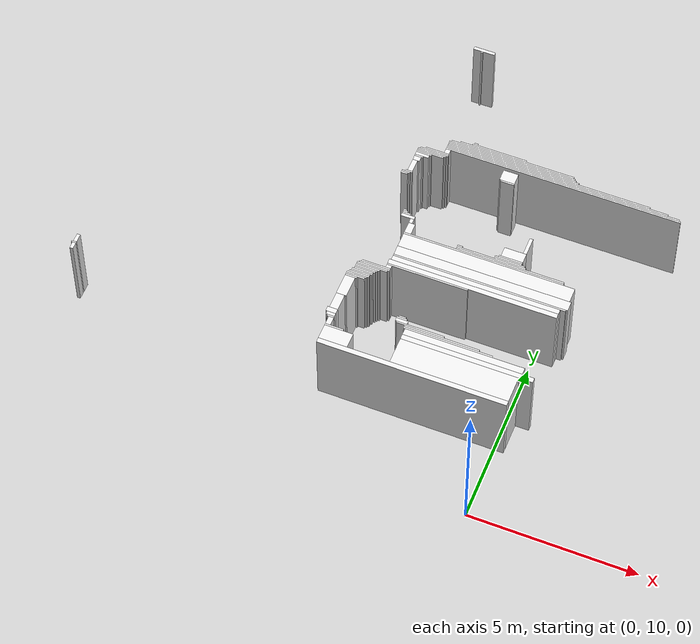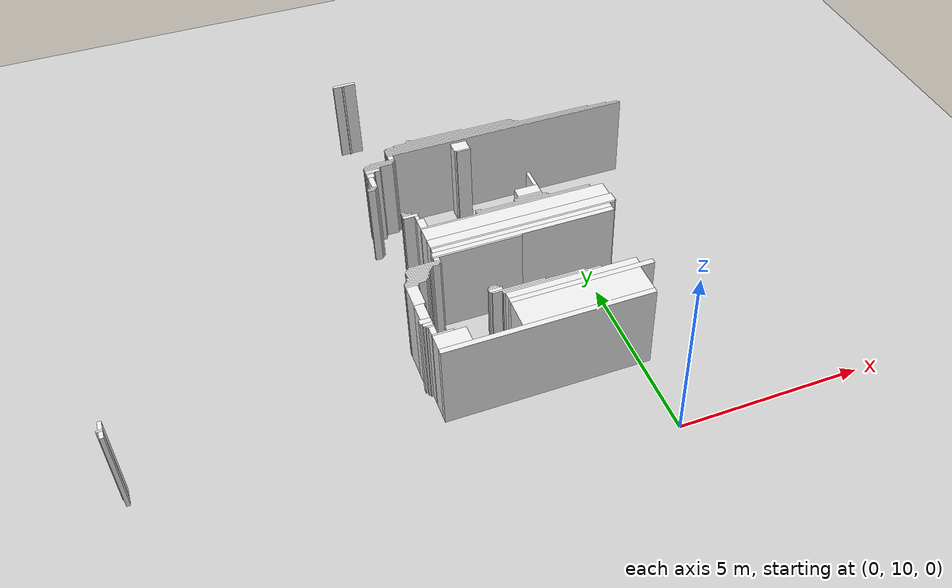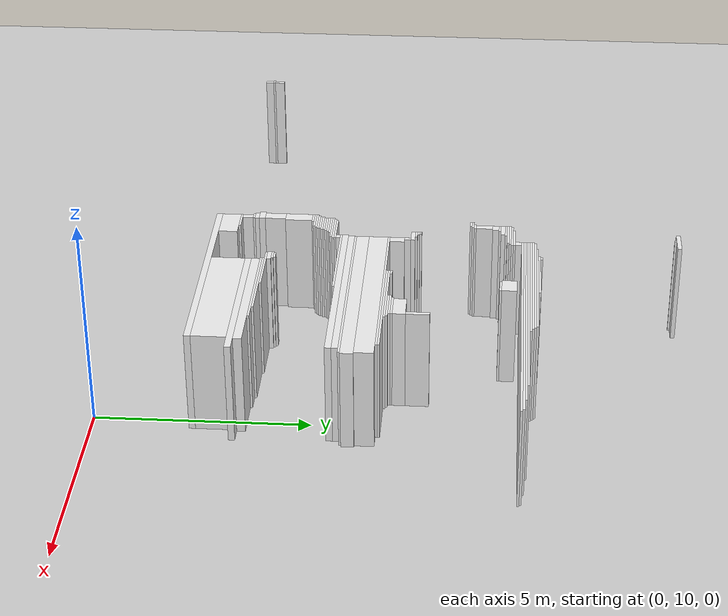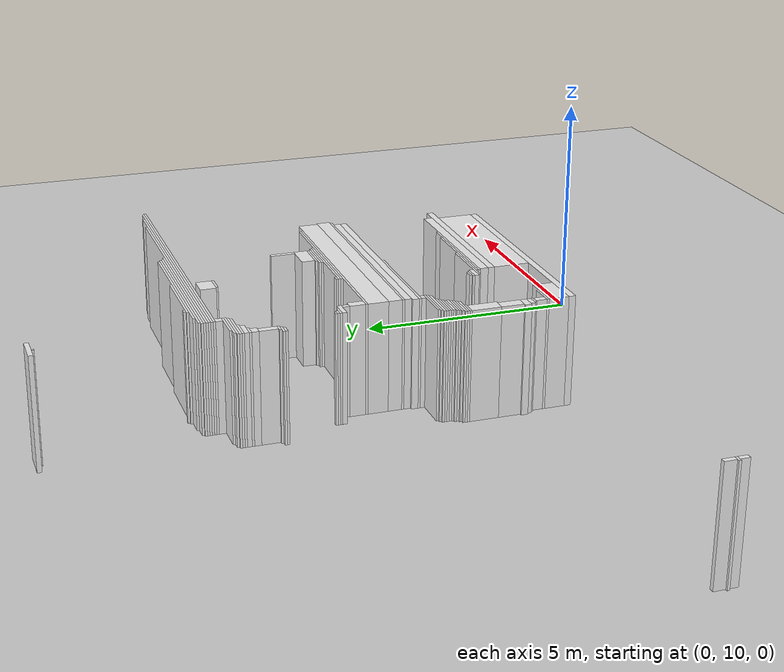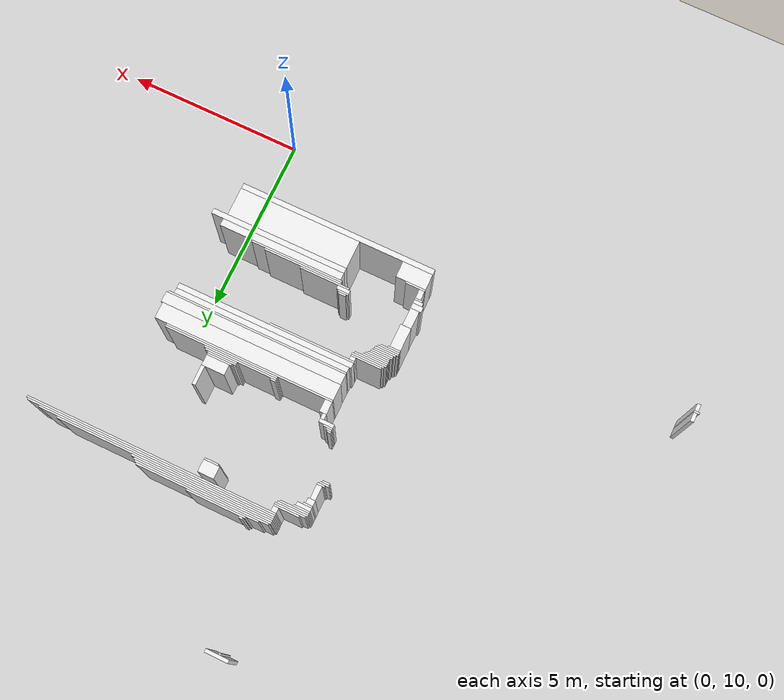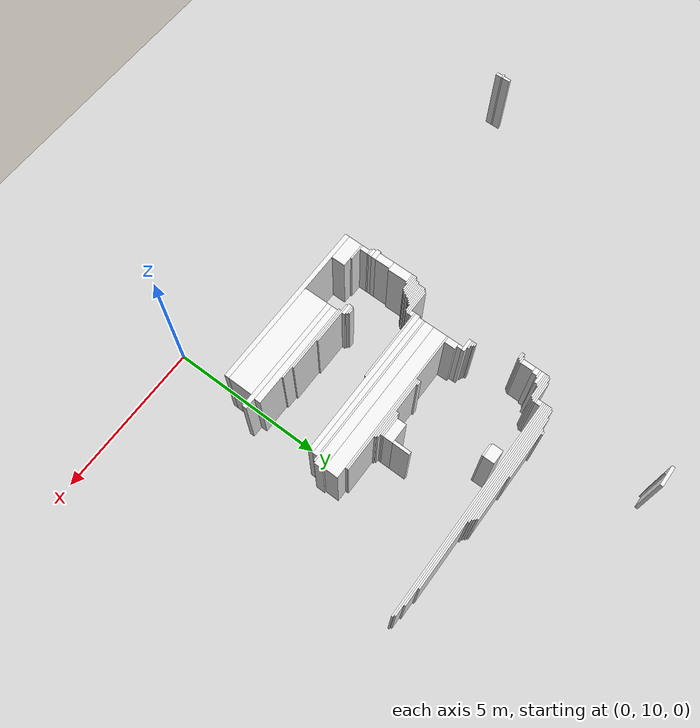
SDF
<sdf version="1.7">
 <world name="occupancy_map_world">
  <model name="ground_plane">
   <static>true</static>
   <link name="link">
    <collision name="collision">
     <geometry><plane><normal>0 0 1</normal><size>32.46 49.62000000000001</size></plane></geometry>
    </collision>
    <visual name="visual">
     <geometry><plane><normal>0 0 1</normal><size>32.46 49.62000000000001</size></plane></geometry>
     <material>
      <script><uri>file://media/materials/scripts/gazebo.material</uri><name>Gazebo/Grey</name></script>
     </material>
    </visual>
   </link>
  </model>
  <model name="wall_0">
   <static>true</static>
   <pose>-4.549999999999997 23.425000000000004 1.25 0 0 0.0</pose>
   <link name="link">
    <collision name="collision"><geometry><box><size>0.65 0.1 2.5</size></box></geometry></collision>
    <visual name="visual">
     <geometry><box><size>0.65 0.1 2.5</size></box></geometry>
     <material>
      <script><uri>file://media/materials/scripts/gazebo.material</uri><name>Gazebo/White</name></script>
     </material>
    </visual>
   </link>
  </model>
  <model name="wall_1">
   <static>true</static>
   <pose>-4.599999999999998 23.35 1.25 0 0 0.0</pose>
   <link name="link">
    <collision name="collision"><geometry><box><size>0.05 0.05 2.5</size></box></geometry></collision>
    <visual name="visual">
     <geometry><box><size>0.05 0.05 2.5</size></box></geometry>
     <material>
      <script><uri>file://media/materials/scripts/gazebo.material</uri><name>Gazebo/White</name></script>
     </material>
    </visual>
   </link>
  </model>
  <model name="wall_2">
   <static>true</static>
   <pose>-3.5749999999999975 20.150000000000006 1.25 0 0 0.0</pose>
   <link name="link">
    <collision name="collision"><geometry><box><size>0.1 0.05 2.5</size></box></geometry></collision>
    <visual name="visual">
     <geometry><box><size>0.1 0.05 2.5</size></box></geometry>
     <material>
      <script><uri>file://media/materials/scripts/gazebo.material</uri><name>Gazebo/White</name></script>
     </material>
    </visual>
   </link>
  </model>
  <model name="wall_3">
   <static>true</static>
   <pose>-2.849999999999998 20.1 1.25 0 0 0.0</pose>
   <link name="link">
    <collision name="collision">
     <geometry><box><size>1.6500000000000001 0.05 2.5</size></box></geometry>
    </collision>
    <visual name="visual">
     <geometry><box><size>1.6500000000000001 0.05 2.5</size></box></geometry>
     <material>
      <script><uri>file://media/materials/scripts/gazebo.material</uri><name>Gazebo/White</name></script>
     </material>
    </visual>
   </link>
  </model>
  <model name="wall_4">
   <static>true</static>
   <pose>-2.299999999999997 20.050000000000004 1.25 0 0 0.0</pose>
   <link name="link">
    <collision name="collision"><geometry><box><size>3.45 0.05 2.5</size></box></geometry></collision>
    <visual name="visual">
     <geometry><box><size>3.45 0.05 2.5</size></box></geometry>
     <material>
      <script><uri>file://media/materials/scripts/gazebo.material</uri><name>Gazebo/White</name></script>
     </material>
    </visual>
   </link>
  </model>
  <model name="wall_5">
   <static>true</static>
   <pose>-2.3999999999999986 20.0 1.25 0 0 0.0</pose>
   <link name="link">
    <collision name="collision"><geometry><box><size>3.75 0.05 2.5</size></box></geometry></collision>
    <visual name="visual">
     <geometry><box><size>3.75 0.05 2.5</size></box></geometry>
     <material>
      <script><uri>file://media/materials/scripts/gazebo.material</uri><name>Gazebo/White</name></script>
     </material>
    </visual>
   </link>
  </model>
  <model name="wall_6">
   <static>true</static>
   <pose>-2.3999999999999986 19.950000000000003 1.25 0 0 0.0</pose>
   <link name="link">
    <collision name="collision"><geometry><box><size>3.85 0.05 2.5</size></box></geometry></collision>
    <visual name="visual">
     <geometry><box><size>3.85 0.05 2.5</size></box></geometry>
     <material>
      <script><uri>file://media/materials/scripts/gazebo.material</uri><name>Gazebo/White</name></script>
     </material>
    </visual>
   </link>
  </model>
  <model name="wall_7">
   <static>true</static>
   <pose>-2.349999999999998 19.900000000000006 1.25 0 0 0.0</pose>
   <link name="link">
    <collision name="collision"><geometry><box><size>3.95 0.05 2.5</size></box></geometry></collision>
    <visual name="visual">
     <geometry><box><size>3.95 0.05 2.5</size></box></geometry>
     <material>
      <script><uri>file://media/materials/scripts/gazebo.material</uri><name>Gazebo/White</name></script>
     </material>
    </visual>
   </link>
  </model>
  <model name="wall_9">
   <static>true</static>
   <pose>-1.2749999999999986 19.85 1.25 0 0 0.0</pose>
   <link name="link">
    <collision name="collision">
     <geometry><box><size>6.1000000000000005 0.05 2.5</size></box></geometry>
    </collision>
    <visual name="visual">
     <geometry><box><size>6.1000000000000005 0.05 2.5</size></box></geometry>
     <material>
      <script><uri>file://media/materials/scripts/gazebo.material</uri><name>Gazebo/White</name></script>
     </material>
    </visual>
   </link>
  </model>
  <model name="wall_10">
   <static>true</static>
   <pose>-0.9999999999999964 19.800000000000004 1.25 0 0 0.0</pose>
   <link name="link">
    <collision name="collision"><geometry><box><size>6.65 0.05 2.5</size></box></geometry></collision>
    <visual name="visual">
     <geometry><box><size>6.65 0.05 2.5</size></box></geometry>
     <material>
      <script><uri>file://media/materials/scripts/gazebo.material</uri><name>Gazebo/White</name></script>
     </material>
    </visual>
   </link>
  </model>
  <model name="wall_11">
   <static>true</static>
   <pose>-0.8249999999999993 19.75 1.25 0 0 0.0</pose>
   <link name="link">
    <collision name="collision"><geometry><box><size>7.0 0.05 2.5</size></box></geometry></collision>
    <visual name="visual">
     <geometry><box><size>7.0 0.05 2.5</size></box></geometry>
     <material>
      <script><uri>file://media/materials/scripts/gazebo.material</uri><name>Gazebo/White</name></script>
     </material>
    </visual>
   </link>
  </model>
  <model name="wall_13">
   <static>true</static>
   <pose>-0.7999999999999972 19.700000000000003 1.25 0 0 0.0</pose>
   <link name="link">
    <collision name="collision">
     <geometry><box><size>7.050000000000001 0.05 2.5</size></box></geometry>
    </collision>
    <visual name="visual">
     <geometry><box><size>7.050000000000001 0.05 2.5</size></box></geometry>
     <material>
      <script><uri>file://media/materials/scripts/gazebo.material</uri><name>Gazebo/White</name></script>
     </material>
    </visual>
   </link>
  </model>
  <model name="wall_15">
   <static>true</static>
   <pose>-4.249999999999998 19.6 1.25 0 0 0.0</pose>
   <link name="link">
    <collision name="collision">
     <geometry><box><size>0.15000000000000002 0.15000000000000002 2.5</size></box></geometry>
    </collision>
    <visual name="visual">
     <geometry><box><size>0.15000000000000002 0.15000000000000002 2.5</size></box></geometry>
     <material>
      <script><uri>file://media/materials/scripts/gazebo.material</uri><name>Gazebo/White</name></script>
     </material>
    </visual>
   </link>
  </model>
  <model name="wall_22">
   <static>true</static>
   <pose>-2.299999999999997 19.400000000000006 1.25 0 0 0.0</pose>
   <link name="link">
    <collision name="collision">
     <geometry><box><size>0.45 0.35000000000000003 2.5</size></box></geometry>
    </collision>
    <visual name="visual">
     <geometry><box><size>0.45 0.35000000000000003 2.5</size></box></geometry>
     <material>
      <script><uri>file://media/materials/scripts/gazebo.material</uri><name>Gazebo/White</name></script>
     </material>
    </visual>
   </link>
  </model>
  <model name="wall_24">
   <static>true</static>
   <pose>-4.524999999999999 19.5 1.25 0 0 0.0</pose>
   <link name="link">
    <collision name="collision">
     <geometry><box><size>0.7000000000000001 0.05 2.5</size></box></geometry>
    </collision>
    <visual name="visual">
     <geometry><box><size>0.7000000000000001 0.05 2.5</size></box></geometry>
     <material>
      <script><uri>file://media/materials/scripts/gazebo.material</uri><name>Gazebo/White</name></script>
     </material>
    </visual>
   </link>
  </model>
  <model name="wall_27">
   <static>true</static>
   <pose>-4.599999999999998 19.450000000000003 1.25 0 0 0.0</pose>
   <link name="link">
    <collision name="collision">
     <geometry><box><size>0.8500000000000001 0.05 2.5</size></box></geometry>
    </collision>
    <visual name="visual">
     <geometry><box><size>0.8500000000000001 0.05 2.5</size></box></geometry>
     <material>
      <script><uri>file://media/materials/scripts/gazebo.material</uri><name>Gazebo/White</name></script>
     </material>
    </visual>
   </link>
  </model>
  <model name="wall_31">
   <static>true</static>
   <pose>-4.649999999999999 19.400000000000006 1.25 0 0 0.0</pose>
   <link name="link">
    <collision name="collision">
     <geometry><box><size>0.8500000000000001 0.05 2.5</size></box></geometry>
    </collision>
    <visual name="visual">
     <geometry><box><size>0.8500000000000001 0.05 2.5</size></box></geometry>
     <material>
      <script><uri>file://media/materials/scripts/gazebo.material</uri><name>Gazebo/White</name></script>
     </material>
    </visual>
   </link>
  </model>
  <model name="wall_35">
   <static>true</static>
   <pose>-4.674999999999997 19.35 1.25 0 0 0.0</pose>
   <link name="link">
    <collision name="collision"><geometry><box><size>0.8 0.05 2.5</size></box></geometry></collision>
    <visual name="visual">
     <geometry><box><size>0.8 0.05 2.5</size></box></geometry>
     <material>
      <script><uri>file://media/materials/scripts/gazebo.material</uri><name>Gazebo/White</name></script>
     </material>
    </visual>
   </link>
  </model>
  <model name="wall_40">
   <static>true</static>
   <pose>-4.849999999999998 19.300000000000004 1.25 0 0 0.0</pose>
   <link name="link">
    <collision name="collision"><geometry><box><size>0.45 0.05 2.5</size></box></geometry></collision>
    <visual name="visual">
     <geometry><box><size>0.45 0.05 2.5</size></box></geometry>
     <material>
      <script><uri>file://media/materials/scripts/gazebo.material</uri><name>Gazebo/White</name></script>
     </material>
    </visual>
   </link>
  </model>
  <model name="wall_43">
   <static>true</static>
   <pose>-4.874999999999998 19.225 1.25 0 0 0.0</pose>
   <link name="link">
    <collision name="collision"><geometry><box><size>0.4 0.1 2.5</size></box></geometry></collision>
    <visual name="visual">
     <geometry><box><size>0.4 0.1 2.5</size></box></geometry>
     <material>
      <script><uri>file://media/materials/scripts/gazebo.material</uri><name>Gazebo/White</name></script>
     </material>
    </visual>
   </link>
  </model>
  <model name="wall_46">
   <static>true</static>
   <pose>-2.2749999999999986 19.200000000000003 1.25 0 0 0.0</pose>
   <link name="link">
    <collision name="collision"><geometry><box><size>0.4 0.05 2.5</size></box></geometry></collision>
    <visual name="visual">
     <geometry><box><size>0.4 0.05 2.5</size></box></geometry>
     <material>
      <script><uri>file://media/materials/scripts/gazebo.material</uri><name>Gazebo/White</name></script>
     </material>
    </visual>
   </link>
  </model>
  <model name="wall_49">
   <static>true</static>
   <pose>-4.9499999999999975 19.150000000000006 1.25 0 0 0.0</pose>
   <link name="link">
    <collision name="collision"><geometry><box><size>0.25 0.05 2.5</size></box></geometry></collision>
    <visual name="visual">
     <geometry><box><size>0.25 0.05 2.5</size></box></geometry>
     <material>
      <script><uri>file://media/materials/scripts/gazebo.material</uri><name>Gazebo/White</name></script>
     </material>
    </visual>
   </link>
  </model>
  <model name="wall_52">
   <static>true</static>
   <pose>-4.974999999999998 19.050000000000004 1.25 0 0 0.0</pose>
   <link name="link">
    <collision name="collision">
     <geometry><box><size>0.2 0.15000000000000002 2.5</size></box></geometry>
    </collision>
    <visual name="visual">
     <geometry><box><size>0.2 0.15000000000000002 2.5</size></box></geometry>
     <material>
      <script><uri>file://media/materials/scripts/gazebo.material</uri><name>Gazebo/White</name></script>
     </material>
    </visual>
   </link>
  </model>
  <model name="wall_61">
   <static>true</static>
   <pose>-4.999999999999998 18.775000000000006 1.25 0 0 0.0</pose>
   <link name="link">
    <collision name="collision">
     <geometry><box><size>0.15000000000000002 0.4 2.5</size></box></geometry>
    </collision>
    <visual name="visual">
     <geometry><box><size>0.15000000000000002 0.4 2.5</size></box></geometry>
     <material>
      <script><uri>file://media/materials/scripts/gazebo.material</uri><name>Gazebo/White</name></script>
     </material>
    </visual>
   </link>
  </model>
  <model name="wall_75">
   <static>true</static>
   <pose>-5.024999999999999 18.550000000000004 1.25 0 0 0.0</pose>
   <link name="link">
    <collision name="collision"><geometry><box><size>0.2 0.05 2.5</size></box></geometry></collision>
    <visual name="visual">
     <geometry><box><size>0.2 0.05 2.5</size></box></geometry>
     <material>
      <script><uri>file://media/materials/scripts/gazebo.material</uri><name>Gazebo/White</name></script>
     </material>
    </visual>
   </link>
  </model>
  <model name="wall_79">
   <static>true</static>
   <pose>-5.099999999999998 18.5 1.25 0 0 0.0</pose>
   <link name="link">
    <collision name="collision"><geometry><box><size>0.25 0.05 2.5</size></box></geometry></collision>
    <visual name="visual">
     <geometry><box><size>0.25 0.05 2.5</size></box></geometry>
     <material>
      <script><uri>file://media/materials/scripts/gazebo.material</uri><name>Gazebo/White</name></script>
     </material>
    </visual>
   </link>
  </model>
  <model name="wall_81">
   <static>true</static>
   <pose>-5.124999999999998 18.450000000000003 1.25 0 0 0.0</pose>
   <link name="link">
    <collision name="collision"><geometry><box><size>0.2 0.05 2.5</size></box></geometry></collision>
    <visual name="visual">
     <geometry><box><size>0.2 0.05 2.5</size></box></geometry>
     <material>
      <script><uri>file://media/materials/scripts/gazebo.material</uri><name>Gazebo/White</name></script>
     </material>
    </visual>
   </link>
  </model>
  <model name="wall_95">
   <static>true</static>
   <pose>-0.9749999999999979 17.35 1.25 0 0 0.0</pose>
   <link name="link">
    <collision name="collision"><geometry><box><size>0.1 0.55 2.5</size></box></geometry></collision>
    <visual name="visual">
     <geometry><box><size>0.1 0.55 2.5</size></box></geometry>
     <material>
      <script><uri>file://media/materials/scripts/gazebo.material</uri><name>Gazebo/White</name></script>
     </material>
    </visual>
   </link>
  </model>
  <model name="wall_97">
   <static>true</static>
   <pose>-4.624999999999998 17.25 1.25 0 0 0.0</pose>
   <link name="link">
    <collision name="collision"><geometry><box><size>0.1 0.05 2.5</size></box></geometry></collision>
    <visual name="visual">
     <geometry><box><size>0.1 0.05 2.5</size></box></geometry>
     <material>
      <script><uri>file://media/materials/scripts/gazebo.material</uri><name>Gazebo/White</name></script>
     </material>
    </visual>
   </link>
  </model>
  <model name="wall_98">
   <static>true</static>
   <pose>-4.599999999999998 17.200000000000003 1.25 0 0 0.0</pose>
   <link name="link">
    <collision name="collision">
     <geometry><box><size>0.15000000000000002 0.05 2.5</size></box></geometry>
    </collision>
    <visual name="visual">
     <geometry><box><size>0.15000000000000002 0.05 2.5</size></box></geometry>
     <material>
      <script><uri>file://media/materials/scripts/gazebo.material</uri><name>Gazebo/White</name></script>
     </material>
    </visual>
   </link>
  </model>
  <model name="wall_101">
   <static>true</static>
   <pose>-4.549999999999997 17.15 1.25 0 0 0.0</pose>
   <link name="link">
    <collision name="collision"><geometry><box><size>0.25 0.05 2.5</size></box></geometry></collision>
    <visual name="visual">
     <geometry><box><size>0.25 0.05 2.5</size></box></geometry>
     <material>
      <script><uri>file://media/materials/scripts/gazebo.material</uri><name>Gazebo/White</name></script>
     </material>
    </visual>
   </link>
  </model>
  <model name="wall_102">
   <static>true</static>
   <pose>-4.474999999999998 17.075000000000003 1.25 0 0 0.0</pose>
   <link name="link">
    <collision name="collision"><geometry><box><size>0.4 0.1 2.5</size></box></geometry></collision>
    <visual name="visual">
     <geometry><box><size>0.4 0.1 2.5</size></box></geometry>
     <material>
      <script><uri>file://media/materials/scripts/gazebo.material</uri><name>Gazebo/White</name></script>
     </material>
    </visual>
   </link>
  </model>
  <model name="wall_103">
   <static>true</static>
   <pose>-1.2499999999999964 16.925000000000004 1.25 0 0 0.0</pose>
   <link name="link">
    <collision name="collision">
     <geometry><box><size>0.65 0.30000000000000004 2.5</size></box></geometry>
    </collision>
    <visual name="visual">
     <geometry><box><size>0.65 0.30000000000000004 2.5</size></box></geometry>
     <material>
      <script><uri>file://media/materials/scripts/gazebo.material</uri><name>Gazebo/White</name></script>
     </material>
    </visual>
   </link>
  </model>
  <model name="wall_105">
   <static>true</static>
   <pose>-4.3249999999999975 16.950000000000003 1.25 0 0 0.0</pose>
   <link name="link">
    <collision name="collision">
     <geometry><box><size>0.1 0.15000000000000002 2.5</size></box></geometry>
    </collision>
    <visual name="visual">
     <geometry><box><size>0.1 0.15000000000000002 2.5</size></box></geometry>
     <material>
      <script><uri>file://media/materials/scripts/gazebo.material</uri><name>Gazebo/White</name></script>
     </material>
    </visual>
   </link>
  </model>
  <model name="wall_112">
   <static>true</static>
   <pose>-4.274999999999999 16.700000000000003 1.25 0 0 0.0</pose>
   <link name="link">
    <collision name="collision">
     <geometry><box><size>0.2 0.35000000000000003 2.5</size></box></geometry>
    </collision>
    <visual name="visual">
     <geometry><box><size>0.2 0.35000000000000003 2.5</size></box></geometry>
     <material>
      <script><uri>file://media/materials/scripts/gazebo.material</uri><name>Gazebo/White</name></script>
     </material>
    </visual>
   </link>
  </model>
  <model name="wall_114">
   <static>true</static>
   <pose>-1.2749999999999986 16.75 1.25 0 0 0.0</pose>
   <link name="link">
    <collision name="collision">
     <geometry><box><size>0.7000000000000001 0.05 2.5</size></box></geometry>
    </collision>
    <visual name="visual">
     <geometry><box><size>0.7000000000000001 0.05 2.5</size></box></geometry>
     <material>
      <script><uri>file://media/materials/scripts/gazebo.material</uri><name>Gazebo/White</name></script>
     </material>
    </visual>
   </link>
  </model>
  <model name="wall_115">
   <static>true</static>
   <pose>-1.3249999999999993 16.700000000000003 1.25 0 0 0.0</pose>
   <link name="link">
    <collision name="collision"><geometry><box><size>0.8 0.05 2.5</size></box></geometry></collision>
    <visual name="visual">
     <geometry><box><size>0.8 0.05 2.5</size></box></geometry>
     <material>
      <script><uri>file://media/materials/scripts/gazebo.material</uri><name>Gazebo/White</name></script>
     </material>
    </visual>
   </link>
  </model>
  <model name="wall_116">
   <static>true</static>
   <pose>-2.7499999999999982 16.65 1.25 0 0 0.0</pose>
   <link name="link">
    <collision name="collision">
     <geometry><box><size>0.15000000000000002 0.05 2.5</size></box></geometry>
    </collision>
    <visual name="visual">
     <geometry><box><size>0.15000000000000002 0.05 2.5</size></box></geometry>
     <material>
      <script><uri>file://media/materials/scripts/gazebo.material</uri><name>Gazebo/White</name></script>
     </material>
    </visual>
   </link>
  </model>
  <model name="wall_117">
   <static>true</static>
   <pose>-1.2749999999999986 16.65 1.25 0 0 0.0</pose>
   <link name="link">
    <collision name="collision"><geometry><box><size>0.9 0.05 2.5</size></box></geometry></collision>
    <visual name="visual">
     <geometry><box><size>0.9 0.05 2.5</size></box></geometry>
     <material>
      <script><uri>file://media/materials/scripts/gazebo.material</uri><name>Gazebo/White</name></script>
     </material>
    </visual>
   </link>
  </model>
  <model name="wall_120">
   <static>true</static>
   <pose>-1.7999999999999972 16.6 1.25 0 0 0.0</pose>
   <link name="link">
    <collision name="collision">
     <geometry><box><size>2.0500000000000003 0.05 2.5</size></box></geometry>
    </collision>
    <visual name="visual">
     <geometry><box><size>2.0500000000000003 0.05 2.5</size></box></geometry>
     <material>
      <script><uri>file://media/materials/scripts/gazebo.material</uri><name>Gazebo/White</name></script>
     </material>
    </visual>
   </link>
  </model>
  <model name="wall_122">
   <static>true</static>
   <pose>-1.2249999999999979 16.550000000000004 1.25 0 0 0.0</pose>
   <link name="link">
    <collision name="collision"><geometry><box><size>3.2 0.05 2.5</size></box></geometry></collision>
    <visual name="visual">
     <geometry><box><size>3.2 0.05 2.5</size></box></geometry>
     <material>
      <script><uri>file://media/materials/scripts/gazebo.material</uri><name>Gazebo/White</name></script>
     </material>
    </visual>
   </link>
  </model>
  <model name="wall_123">
   <static>true</static>
   <pose>-1.9999999999999982 16.5 1.25 0 0 0.0</pose>
   <link name="link">
    <collision name="collision"><geometry><box><size>4.75 0.05 2.5</size></box></geometry></collision>
    <visual name="visual">
     <geometry><box><size>4.75 0.05 2.5</size></box></geometry>
     <material>
      <script><uri>file://media/materials/scripts/gazebo.material</uri><name>Gazebo/White</name></script>
     </material>
    </visual>
   </link>
  </model>
  <model name="wall_124">
   <static>true</static>
   <pose>-1.8249999999999993 16.25 1.25 0 0 0.0</pose>
   <link name="link">
    <collision name="collision">
     <geometry><box><size>5.1000000000000005 0.45 2.5</size></box></geometry>
    </collision>
    <visual name="visual">
     <geometry><box><size>5.1000000000000005 0.45 2.5</size></box></geometry>
     <material>
      <script><uri>file://media/materials/scripts/gazebo.material</uri><name>Gazebo/White</name></script>
     </material>
    </visual>
   </link>
  </model>
  <model name="wall_125">
   <static>true</static>
   <pose>-1.8249999999999993 15.700000000000003 1.25 0 0 0.0</pose>
   <link name="link">
    <collision name="collision">
     <geometry><box><size>5.1000000000000005 0.05 2.5</size></box></geometry>
    </collision>
    <visual name="visual">
     <geometry><box><size>5.1000000000000005 0.05 2.5</size></box></geometry>
     <material>
      <script><uri>file://media/materials/scripts/gazebo.material</uri><name>Gazebo/White</name></script>
     </material>
    </visual>
   </link>
  </model>
  <model name="wall_130">
   <static>true</static>
   <pose>-1.7999999999999972 15.875 1.25 0 0 0.0</pose>
   <link name="link">
    <collision name="collision">
     <geometry><box><size>5.15 0.30000000000000004 2.5</size></box></geometry>
    </collision>
    <visual name="visual">
     <geometry><box><size>5.15 0.30000000000000004 2.5</size></box></geometry>
     <material>
      <script><uri>file://media/materials/scripts/gazebo.material</uri><name>Gazebo/White</name></script>
     </material>
    </visual>
   </link>
  </model>
  <model name="wall_136">
   <static>true</static>
   <pose>-1.8999999999999986 15.600000000000001 1.25 0 0 0.0</pose>
   <link name="link">
    <collision name="collision">
     <geometry><box><size>4.95 0.15000000000000002 2.5</size></box></geometry>
    </collision>
    <visual name="visual">
     <geometry><box><size>4.95 0.15000000000000002 2.5</size></box></geometry>
     <material>
      <script><uri>file://media/materials/scripts/gazebo.material</uri><name>Gazebo/White</name></script>
     </material>
    </visual>
   </link>
  </model>
  <model name="wall_140">
   <static>true</static>
   <pose>-1.9249999999999972 15.450000000000003 1.25 0 0 0.0</pose>
   <link name="link">
    <collision name="collision">
     <geometry><box><size>5.0 0.15000000000000002 2.5</size></box></geometry>
    </collision>
    <visual name="visual">
     <geometry><box><size>5.0 0.15000000000000002 2.5</size></box></geometry>
     <material>
      <script><uri>file://media/materials/scripts/gazebo.material</uri><name>Gazebo/White</name></script>
     </material>
    </visual>
   </link>
  </model>
  <model name="wall_143">
   <static>true</static>
   <pose>-3.224999999999998 15.350000000000001 1.25 0 0 0.0</pose>
   <link name="link">
    <collision name="collision">
     <geometry><box><size>2.4000000000000004 0.05 2.5</size></box></geometry>
    </collision>
    <visual name="visual">
     <geometry><box><size>2.4000000000000004 0.05 2.5</size></box></geometry>
     <material>
      <script><uri>file://media/materials/scripts/gazebo.material</uri><name>Gazebo/White</name></script>
     </material>
    </visual>
   </link>
  </model>
  <model name="wall_145">
   <static>true</static>
   <pose>-4.349999999999998 15.274999999999999 1.25 0 0 0.0</pose>
   <link name="link">
    <collision name="collision">
     <geometry><box><size>0.15000000000000002 0.1 2.5</size></box></geometry>
    </collision>
    <visual name="visual">
     <geometry><box><size>0.15000000000000002 0.1 2.5</size></box></geometry>
     <material>
      <script><uri>file://media/materials/scripts/gazebo.material</uri><name>Gazebo/White</name></script>
     </material>
    </visual>
   </link>
  </model>
  <model name="wall_148">
   <static>true</static>
   <pose>-4.6999999999999975 15.200000000000003 1.25 0 0 0.0</pose>
   <link name="link">
    <collision name="collision">
     <geometry><box><size>0.8500000000000001 0.05 2.5</size></box></geometry>
    </collision>
    <visual name="visual">
     <geometry><box><size>0.8500000000000001 0.05 2.5</size></box></geometry>
     <material>
      <script><uri>file://media/materials/scripts/gazebo.material</uri><name>Gazebo/White</name></script>
     </material>
    </visual>
   </link>
  </model>
  <model name="wall_149">
   <static>true</static>
   <pose>-4.724999999999998 15.149999999999999 1.25 0 0 0.0</pose>
   <link name="link">
    <collision name="collision"><geometry><box><size>0.9 0.05 2.5</size></box></geometry></collision>
    <visual name="visual">
     <geometry><box><size>0.9 0.05 2.5</size></box></geometry>
     <material>
      <script><uri>file://media/materials/scripts/gazebo.material</uri><name>Gazebo/White</name></script>
     </material>
    </visual>
   </link>
  </model>
  <model name="wall_150">
   <static>true</static>
   <pose>-4.774999999999999 15.100000000000001 1.25 0 0 0.0</pose>
   <link name="link">
    <collision name="collision"><geometry><box><size>0.9 0.05 2.5</size></box></geometry></collision>
    <visual name="visual">
     <geometry><box><size>0.9 0.05 2.5</size></box></geometry>
     <material>
      <script><uri>file://media/materials/scripts/gazebo.material</uri><name>Gazebo/White</name></script>
     </material>
    </visual>
   </link>
  </model>
  <model name="wall_151">
   <static>true</static>
   <pose>-4.874999999999998 15.050000000000004 1.25 0 0 0.0</pose>
   <link name="link">
    <collision name="collision">
     <geometry><box><size>0.7000000000000001 0.05 2.5</size></box></geometry>
    </collision>
    <visual name="visual">
     <geometry><box><size>0.7000000000000001 0.05 2.5</size></box></geometry>
     <material>
      <script><uri>file://media/materials/scripts/gazebo.material</uri><name>Gazebo/White</name></script>
     </material>
    </visual>
   </link>
  </model>
  <model name="wall_152">
   <static>true</static>
   <pose>-4.899999999999999 15.0 1.25 0 0 0.0</pose>
   <link name="link">
    <collision name="collision"><geometry><box><size>0.65 0.05 2.5</size></box></geometry></collision>
    <visual name="visual">
     <geometry><box><size>0.65 0.05 2.5</size></box></geometry>
     <material>
      <script><uri>file://media/materials/scripts/gazebo.material</uri><name>Gazebo/White</name></script>
     </material>
    </visual>
   </link>
  </model>
  <model name="wall_153">
   <static>true</static>
   <pose>-4.924999999999997 14.950000000000003 1.25 0 0 0.0</pose>
   <link name="link">
    <collision name="collision">
     <geometry><box><size>0.6000000000000001 0.05 2.5</size></box></geometry>
    </collision>
    <visual name="visual">
     <geometry><box><size>0.6000000000000001 0.05 2.5</size></box></geometry>
     <material>
      <script><uri>file://media/materials/scripts/gazebo.material</uri><name>Gazebo/White</name></script>
     </material>
    </visual>
   </link>
  </model>
  <model name="wall_154">
   <static>true</static>
   <pose>-4.9499999999999975 14.899999999999999 1.25 0 0 0.0</pose>
   <link name="link">
    <collision name="collision"><geometry><box><size>0.55 0.05 2.5</size></box></geometry></collision>
    <visual name="visual">
     <geometry><box><size>0.55 0.05 2.5</size></box></geometry>
     <material>
      <script><uri>file://media/materials/scripts/gazebo.material</uri><name>Gazebo/White</name></script>
     </material>
    </visual>
   </link>
  </model>
  <model name="wall_155">
   <static>true</static>
   <pose>-4.974999999999998 14.850000000000001 1.25 0 0 0.0</pose>
   <link name="link">
    <collision name="collision">
     <geometry><box><size>0.6000000000000001 0.05 2.5</size></box></geometry>
    </collision>
    <visual name="visual">
     <geometry><box><size>0.6000000000000001 0.05 2.5</size></box></geometry>
     <material>
      <script><uri>file://media/materials/scripts/gazebo.material</uri><name>Gazebo/White</name></script>
     </material>
    </visual>
   </link>
  </model>
  <model name="wall_156">
   <static>true</static>
   <pose>-4.999999999999998 14.800000000000004 1.25 0 0 0.0</pose>
   <link name="link">
    <collision name="collision"><geometry><box><size>0.55 0.05 2.5</size></box></geometry></collision>
    <visual name="visual">
     <geometry><box><size>0.55 0.05 2.5</size></box></geometry>
     <material>
      <script><uri>file://media/materials/scripts/gazebo.material</uri><name>Gazebo/White</name></script>
     </material>
    </visual>
   </link>
  </model>
  <model name="wall_157">
   <static>true</static>
   <pose>-4.999999999999998 12.850000000000001 1.25 0 0 0.0</pose>
   <link name="link">
    <collision name="collision"><geometry><box><size>0.55 0.05 2.5</size></box></geometry></collision>
    <visual name="visual">
     <geometry><box><size>0.55 0.05 2.5</size></box></geometry>
     <material>
      <script><uri>file://media/materials/scripts/gazebo.material</uri><name>Gazebo/White</name></script>
     </material>
    </visual>
   </link>
  </model>
  <model name="wall_158">
   <static>true</static>
   <pose>-5.024999999999999 14.75 1.25 0 0 0.0</pose>
   <link name="link">
    <collision name="collision">
     <geometry><box><size>0.6000000000000001 0.05 2.5</size></box></geometry>
    </collision>
    <visual name="visual">
     <geometry><box><size>0.6000000000000001 0.05 2.5</size></box></geometry>
     <material>
      <script><uri>file://media/materials/scripts/gazebo.material</uri><name>Gazebo/White</name></script>
     </material>
    </visual>
   </link>
  </model>
  <model name="wall_159">
   <static>true</static>
   <pose>-5.0749999999999975 14.700000000000003 1.25 0 0 0.0</pose>
   <link name="link">
    <collision name="collision">
     <geometry><box><size>0.6000000000000001 0.05 2.5</size></box></geometry>
    </collision>
    <visual name="visual">
     <geometry><box><size>0.6000000000000001 0.05 2.5</size></box></geometry>
     <material>
      <script><uri>file://media/materials/scripts/gazebo.material</uri><name>Gazebo/White</name></script>
     </material>
    </visual>
   </link>
  </model>
  <model name="wall_160">
   <static>true</static>
   <pose>-5.099999999999998 14.649999999999999 1.25 0 0 0.0</pose>
   <link name="link">
    <collision name="collision"><geometry><box><size>0.55 0.05 2.5</size></box></geometry></collision>
    <visual name="visual">
     <geometry><box><size>0.55 0.05 2.5</size></box></geometry>
     <material>
      <script><uri>file://media/materials/scripts/gazebo.material</uri><name>Gazebo/White</name></script>
     </material>
    </visual>
   </link>
  </model>
  <model name="wall_162">
   <static>true</static>
   <pose>-5.1999999999999975 14.600000000000001 1.25 0 0 0.0</pose>
   <link name="link">
    <collision name="collision">
     <geometry><box><size>0.35000000000000003 0.05 2.5</size></box></geometry>
    </collision>
    <visual name="visual">
     <geometry><box><size>0.35000000000000003 0.05 2.5</size></box></geometry>
     <material>
      <script><uri>file://media/materials/scripts/gazebo.material</uri><name>Gazebo/White</name></script>
     </material>
    </visual>
   </link>
  </model>
  <model name="wall_165">
   <static>true</static>
   <pose>-5.224999999999998 14.25 1.25 0 0 0.0</pose>
   <link name="link">
    <collision name="collision">
     <geometry><box><size>0.30000000000000004 0.65 2.5</size></box></geometry>
    </collision>
    <visual name="visual">
     <geometry><box><size>0.30000000000000004 0.65 2.5</size></box></geometry>
     <material>
      <script><uri>file://media/materials/scripts/gazebo.material</uri><name>Gazebo/White</name></script>
     </material>
    </visual>
   </link>
  </model>
  <model name="wall_172">
   <static>true</static>
   <pose>-5.249999999999998 13.675000000000004 1.25 0 0 0.0</pose>
   <link name="link">
    <collision name="collision"><geometry><box><size>0.25 0.5 2.5</size></box></geometry></collision>
    <visual name="visual">
     <geometry><box><size>0.25 0.5 2.5</size></box></geometry>
     <material>
      <script><uri>file://media/materials/scripts/gazebo.material</uri><name>Gazebo/White</name></script>
     </material>
    </visual>
   </link>
  </model>
  <model name="wall_173">
   <static>true</static>
   <pose>-5.249999999999998 13.225000000000001 1.25 0 0 0.0</pose>
   <link name="link">
    <collision name="collision"><geometry><box><size>0.25 0.1 2.5</size></box></geometry></collision>
    <visual name="visual">
     <geometry><box><size>0.25 0.1 2.5</size></box></geometry>
     <material>
      <script><uri>file://media/materials/scripts/gazebo.material</uri><name>Gazebo/White</name></script>
     </material>
    </visual>
   </link>
  </model>
  <model name="wall_174">
   <static>true</static>
   <pose>-3.3749999999999982 13.850000000000001 1.25 0 0 0.0</pose>
   <link name="link">
    <collision name="collision"><geometry><box><size>0.2 0.05 2.5</size></box></geometry></collision>
    <visual name="visual">
     <geometry><box><size>0.2 0.05 2.5</size></box></geometry>
     <material>
      <script><uri>file://media/materials/scripts/gazebo.material</uri><name>Gazebo/White</name></script>
     </material>
    </visual>
   </link>
  </model>
  <model name="wall_175">
   <static>true</static>
   <pose>-3.3749999999999982 13.800000000000004 1.25 0 0 0.0</pose>
   <link name="link">
    <collision name="collision">
     <geometry><box><size>0.30000000000000004 0.05 2.5</size></box></geometry>
    </collision>
    <visual name="visual">
     <geometry><box><size>0.30000000000000004 0.05 2.5</size></box></geometry>
     <material>
      <script><uri>file://media/materials/scripts/gazebo.material</uri><name>Gazebo/White</name></script>
     </material>
    </visual>
   </link>
  </model>
  <model name="wall_176">
   <static>true</static>
   <pose>-3.349999999999998 13.725000000000001 1.25 0 0 0.0</pose>
   <link name="link">
    <collision name="collision">
     <geometry><box><size>0.35000000000000003 0.1 2.5</size></box></geometry>
    </collision>
    <visual name="visual">
     <geometry><box><size>0.35000000000000003 0.1 2.5</size></box></geometry>
     <material>
      <script><uri>file://media/materials/scripts/gazebo.material</uri><name>Gazebo/White</name></script>
     </material>
    </visual>
   </link>
  </model>
  <model name="wall_177">
   <static>true</static>
   <pose>-2.7749999999999986 13.649999999999999 1.25 0 0 0.0</pose>
   <link name="link">
    <collision name="collision">
     <geometry><box><size>1.4000000000000001 0.05 2.5</size></box></geometry>
    </collision>
    <visual name="visual">
     <geometry><box><size>1.4000000000000001 0.05 2.5</size></box></geometry>
     <material>
      <script><uri>file://media/materials/scripts/gazebo.material</uri><name>Gazebo/White</name></script>
     </material>
    </visual>
   </link>
  </model>
  <model name="wall_178">
   <static>true</static>
   <pose>-2.1249999999999982 13.600000000000001 1.25 0 0 0.0</pose>
   <link name="link">
    <collision name="collision"><geometry><box><size>2.2 0.05 2.5</size></box></geometry></collision>
    <visual name="visual">
     <geometry><box><size>2.2 0.05 2.5</size></box></geometry>
     <material>
      <script><uri>file://media/materials/scripts/gazebo.material</uri><name>Gazebo/White</name></script>
     </material>
    </visual>
   </link>
  </model>
  <model name="wall_179">
   <static>true</static>
   <pose>-1.9249999999999972 13.550000000000004 1.25 0 0 0.0</pose>
   <link name="link">
    <collision name="collision"><geometry><box><size>2.6 0.05 2.5</size></box></geometry></collision>
    <visual name="visual">
     <geometry><box><size>2.6 0.05 2.5</size></box></geometry>
     <material>
      <script><uri>file://media/materials/scripts/gazebo.material</uri><name>Gazebo/White</name></script>
     </material>
    </visual>
   </link>
  </model>
  <model name="wall_181">
   <static>true</static>
   <pose>-1.4249999999999972 13.425000000000004 1.25 0 0 0.0</pose>
   <link name="link">
    <collision name="collision"><geometry><box><size>3.5 0.2 2.5</size></box></geometry></collision>
    <visual name="visual">
     <geometry><box><size>3.5 0.2 2.5</size></box></geometry>
     <material>
      <script><uri>file://media/materials/scripts/gazebo.material</uri><name>Gazebo/White</name></script>
     </material>
    </visual>
   </link>
  </model>
  <model name="wall_183">
   <static>true</static>
   <pose>-5.274999999999999 13.350000000000001 1.25 0 0 0.0</pose>
   <link name="link">
    <collision name="collision">
     <geometry><box><size>0.30000000000000004 0.15000000000000002 2.5</size></box></geometry>
    </collision>
    <visual name="visual">
     <geometry><box><size>0.30000000000000004 0.15000000000000002 2.5</size></box></geometry>
     <material>
      <script><uri>file://media/materials/scripts/gazebo.material</uri><name>Gazebo/White</name></script>
     </material>
    </visual>
   </link>
  </model>
  <model name="wall_188">
   <static>true</static>
   <pose>-1.2499999999999964 13.25 1.25 0 0 0.0</pose>
   <link name="link">
    <collision name="collision">
     <geometry><box><size>3.85 0.15000000000000002 2.5</size></box></geometry>
    </collision>
    <visual name="visual">
     <geometry><box><size>3.85 0.15000000000000002 2.5</size></box></geometry>
     <material>
      <script><uri>file://media/materials/scripts/gazebo.material</uri><name>Gazebo/White</name></script>
     </material>
    </visual>
   </link>
  </model>
  <model name="wall_190">
   <static>true</static>
   <pose>-5.224999999999998 13.149999999999999 1.25 0 0 0.0</pose>
   <link name="link">
    <collision name="collision"><geometry><box><size>0.2 0.05 2.5</size></box></geometry></collision>
    <visual name="visual">
     <geometry><box><size>0.2 0.05 2.5</size></box></geometry>
     <material>
      <script><uri>file://media/materials/scripts/gazebo.material</uri><name>Gazebo/White</name></script>
     </material>
    </visual>
   </link>
  </model>
  <model name="wall_191">
   <static>true</static>
   <pose>-1.4499999999999993 12.774999999999999 1.25 0 0 0.0</pose>
   <link name="link">
    <collision name="collision"><geometry><box><size>3.45 0.8 2.5</size></box></geometry></collision>
    <visual name="visual">
     <geometry><box><size>3.45 0.8 2.5</size></box></geometry>
     <material>
      <script><uri>file://media/materials/scripts/gazebo.material</uri><name>Gazebo/White</name></script>
     </material>
    </visual>
   </link>
  </model>
  <model name="wall_194">
   <static>true</static>
   <pose>-5.1999999999999975 13.0 1.25 0 0 0.0</pose>
   <link name="link">
    <collision name="collision">
     <geometry><box><size>0.15000000000000002 0.25 2.5</size></box></geometry>
    </collision>
    <visual name="visual">
     <geometry><box><size>0.15000000000000002 0.25 2.5</size></box></geometry>
     <material>
      <script><uri>file://media/materials/scripts/gazebo.material</uri><name>Gazebo/White</name></script>
     </material>
    </visual>
   </link>
  </model>
  <model name="wall_195">
   <static>true</static>
   <pose>-12.825 12.950000000000003 1.25 0 0 0.0</pose>
   <link name="link">
    <collision name="collision"><geometry><box><size>0.1 0.25 2.5</size></box></geometry></collision>
    <visual name="visual">
     <geometry><box><size>0.1 0.25 2.5</size></box></geometry>
     <material>
      <script><uri>file://media/materials/scripts/gazebo.material</uri><name>Gazebo/White</name></script>
     </material>
    </visual>
   </link>
  </model>
  <model name="wall_196">
   <static>true</static>
   <pose>-12.825 12.675000000000004 1.25 0 0 0.0</pose>
   <link name="link">
    <collision name="collision"><geometry><box><size>0.1 0.2 2.5</size></box></geometry></collision>
    <visual name="visual">
     <geometry><box><size>0.1 0.2 2.5</size></box></geometry>
     <material>
      <script><uri>file://media/materials/scripts/gazebo.material</uri><name>Gazebo/White</name></script>
     </material>
    </visual>
   </link>
  </model>
  <model name="wall_197">
   <static>true</static>
   <pose>-12.849999999999998 12.800000000000004 1.25 0 0 0.0</pose>
   <link name="link">
    <collision name="collision">
     <geometry><box><size>0.15000000000000002 0.05 2.5</size></box></geometry>
    </collision>
    <visual name="visual">
     <geometry><box><size>0.15000000000000002 0.05 2.5</size></box></geometry>
     <material>
      <script><uri>file://media/materials/scripts/gazebo.material</uri><name>Gazebo/White</name></script>
     </material>
    </visual>
   </link>
  </model>
  <model name="wall_198">
   <static>true</static>
   <pose>-4.849999999999998 12.600000000000001 1.25 0 0 0.0</pose>
   <link name="link">
    <collision name="collision">
     <geometry><box><size>0.8500000000000001 0.45 2.5</size></box></geometry>
    </collision>
    <visual name="visual">
     <geometry><box><size>0.8500000000000001 0.45 2.5</size></box></geometry>
     <material>
      <script><uri>file://media/materials/scripts/gazebo.material</uri><name>Gazebo/White</name></script>
     </material>
    </visual>
   </link>
  </model>
  <model name="wall_202">
   <static>true</static>
   <pose>-2.4999999999999982 12.300000000000004 1.25 0 0 0.0</pose>
   <link name="link">
    <collision name="collision">
     <geometry><box><size>5.550000000000001 0.15000000000000002 2.5</size></box></geometry>
    </collision>
    <visual name="visual">
     <geometry><box><size>5.550000000000001 0.15000000000000002 2.5</size></box></geometry>
     <material>
      <script><uri>file://media/materials/scripts/gazebo.material</uri><name>Gazebo/White</name></script>
     </material>
    </visual>
   </link>
  </model>
  <model name="wall_732">
   <static>true</static>
   <pose>-4.599999999999998 23.35 1.25 0 0 0.0</pose>
   <link name="link">
    <collision name="collision"><geometry><box><size>0.05 0.05 2.5</size></box></geometry></collision>
    <visual name="visual">
     <geometry><box><size>0.05 0.05 2.5</size></box></geometry>
     <material>
      <script><uri>file://media/materials/scripts/gazebo.material</uri><name>Gazebo/White</name></script>
     </material>
    </visual>
   </link>
  </model>
 </world>
</sdf>
